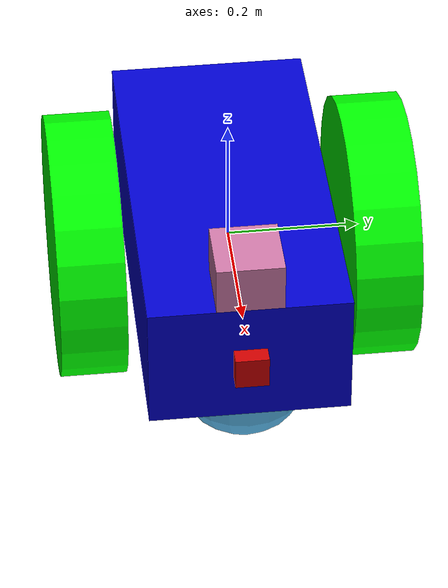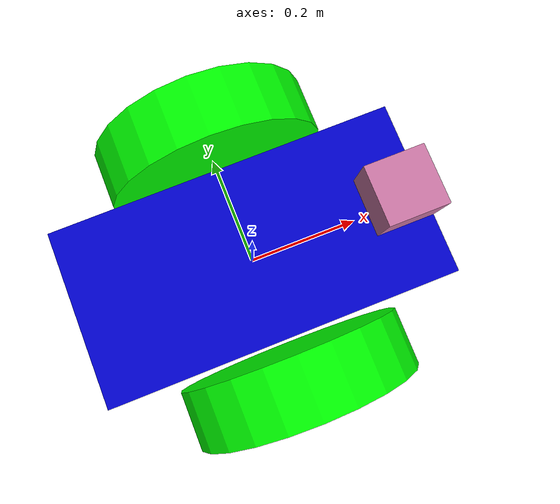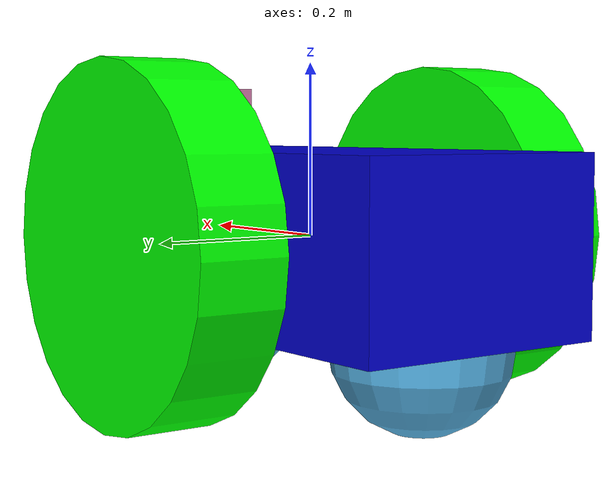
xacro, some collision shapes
<robot name="my_robot" xmlns:xacro="http://www.ros.org/wiki/xacro">
  <xacro:include filename="$(find my_robot)/urdf/my_robot.gazebo" />

  <link name="robot_footprint"></link>

  <joint name="robot_footprint_joint" type="fixed">
    <origin xyz="0 0 0" rpy="0 0 0" />
    <parent link="robot_footprint"/>
    <child link="chassis" />
  </joint>

  <link name='chassis'>
    <pose>0 0 0.1 0 0 0</pose>

    <visual name='chassis_visual'>
      <origin xyz="0 0 0" rpy=" 0 0 0"/>
      <geometry>
        <box size="0.6 0.3 0.2"/>
      </geometry>
      <material name="blue">
        <color rgba="0.0 0.0 0.8 1.0"/>
      </material>
    </visual>

    <collision name='collision'>
      <origin xyz="0 0 0" rpy=" 0 0 0"/>
      <geometry>
        <box size="0.6 0.3 0.2"/>
      </geometry>
    </collision>

    <inertial>
      <mass value="15.0"/>
      <origin xyz="0 0 0" rpy=" 0 0 0"/>
      <inertia
          ixx="0.1" ixy="0" ixz="0"
          iyy="0.1" iyz="0"
          izz="0.1"
      />
    </inertial>

    <visual name='back_caster_visual'>
      <origin xyz="-0.2 0 -0.1" rpy=" 0 0 0"/>
      <geometry>
        <sphere radius="0.1"/>
      </geometry>
    </visual>

    <collision name='back_caster_collision'>
      <origin xyz="-0.2 0 -0.1" rpy=" 0 0 0"/>
      <geometry>
        <sphere radius="0.0999"/>
      </geometry>
    </collision>

    <visual name='front_caster_visual'>
      <origin xyz="0.2 0 -0.1" rpy=" 0 0 0"/>
      <geometry>
        <sphere radius="0.1"/>
      </geometry>
    </visual>

    <collision name='front_caster_collision'>
      <origin xyz="0.2 0 -0.1" rpy=" 0 0 0"/>
      <geometry>
        <sphere radius="0.0999"/>
      </geometry>
    </collision>
  </link>

  <link name="left_wheel">
    <visual name="left_wheel_visual">
      <origin xyz="0 0.11 0" rpy=" 0 1.5707 1.5707"/>
      <geometry>
        <cylinder radius="0.2" length="0.1" />
      </geometry>
      <material name="green">
        <color rgba="0.0 1.0 0.0 1.0"/>
      </material>
    </visual>

    <collision name="left_wheel_collision">
      <origin xyz="0 0.11 0" rpy="0 1.5707 1.5707"/>
      <geometry>
        <cylinder radius="0.2" length="0.1" />
      </geometry>
    </collision>

    <inertial>
      <mass value="5"/>
      <origin xyz="0 0 0" rpy="0 1.5707 1.5707"/>
      <inertia
          ixx="0.1" ixy="0" ixz="0"
          iyy="0.1" iyz="0"
          izz="0.1"
      />
    </inertial>
  </link>

  <link name="right_wheel">
    <visual name="right_wheel_visual">
      <origin xyz="0 -0.11 0" rpy=" 0 1.5707 1.5707"/>
      <geometry>
        <cylinder radius="0.2" length="0.1" />
      </geometry>
      <material name="green">
        <color rgba="0.0 1.0 0.0 1.0"/>
      </material>
    </visual>

    <collision name="right_wheel_collision">
      <origin xyz="0 -0.11 0" rpy="0 1.5707 1.5707"/>
      <geometry>
        <cylinder radius="0.2" length="0.1" />
      </geometry>
    </collision>

    <inertial>
      <mass value="5"/>
      <origin xyz="0 0 0" rpy="0 1.5707 1.5707"/>
      <inertia
          ixx="0.1" ixy="0" ixz="0"
          iyy="0.1" iyz="0"
          izz="0.1"
      />
    </inertial>
  </link>

  <joint type="continuous" name="left_wheel_hinge">
    <origin xyz="0 0.11 0" rpy="0 0 0"/>
    <child link="left_wheel"/>
    <parent link="chassis"/>
    <axis xyz="0 1 0" rpy="0 0 0"/>
    <limit effort="10000" velocity="1000"/>
    <dynamics damping="1.0" friction="1.0"/>
  </joint>

  <joint type="continuous" name="right_wheel_hinge">
    <origin xyz="0 -0.11 0" rpy="0 0 0"/>
    <child link="right_wheel"/>
    <parent link="chassis"/>
    <axis xyz="0 1 0" rpy="0 0 0"/>
    <limit effort="10000" velocity="1000"/>
    <dynamics damping="1.0" friction="1.0"/>
  </joint>

  <link name="camera">
    <visual name="camera_visual">
      <origin xyz="0 0 0" rpy="0 0 0" />
      <geometry>
        <box size="0.05 0.05 0.05" />
      </geometry>
      <material name="red">
        <color rgba="0.8 0.0 0.0 1.0"/>
      </material>
    </visual>

    <collision name="camera_collison">
      <origin xyz="0 0 0" rpy="0 0 0" />
      <geometry>
        <box size="0.05 0.05 0.05" />
      </geometry>
    </collision>

    <inertial>
      <mass value="0.1"/>
      <origin xyz="0 0 0" rpy="0 0 0" />
      <inertia
          ixx="1e-6" ixy="0" ixz="0"
          iyy="1e-6" iyz="0"
          izz="1e-6"
      />
    </inertial>
  </link>

  <joint name="camera_joint" type="fixed">
    <axis xyz="0 1 0"/>
    <origin xyz="0.3 0 0" rpy="0 0 0" />
    <child link="camera" />
    <parent link="chassis" />
  </joint>

  <joint name="camera_optical_joint" type="fixed">
    <origin xyz="0 0 0" rpy="-1.5707 0 -1.5707"/>
    <parent link="camera"/>
    <child link="camera_link_optical"/>
  </joint>

  <link name="camera_link_optical">
  </link>

  <link name="hokuyo">
    <visual name="hokuyo_visual">
      <origin xyz="0 0 0" rpy="0 0 0" />
      <geometry>
        <mesh filename="package://my_robot/meshes/hokuyo.dae" />
      </geometry>
    </visual>

    <collision name="hokuyo_collison">
      <origin xyz="0 0 0" rpy="0 0 0" />
      <geometry>
        <box size="0.1 0.1 0.1" />
      </geometry>
    </collision>

    <inertial>
      <mass value="1e-5"/>
      <origin xyz="0 0 0" rpy="0 0 0" />
      <inertia
          ixx="1e-6" ixy="0" ixz="0"
          iyy="1e-6" iyz="0"
          izz="1e-6"
      />
    </inertial>
  </link>

  <joint name="hokuyo_joint" type="fixed">
    <axis xyz="0 1 0" />
    <origin xyz="0.25 0 0.125" rpy="0 0 0" />
    <child link="hokuyo" />
    <parent link="chassis" />
  </joint>
</robot>
